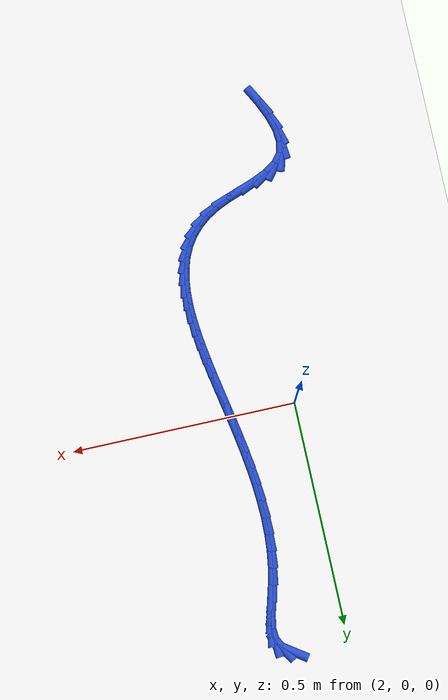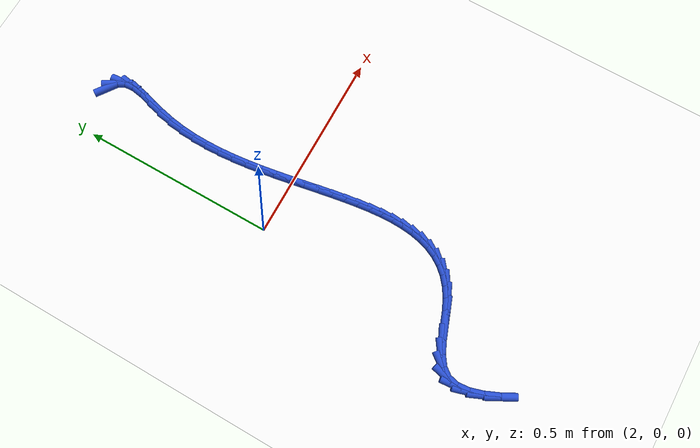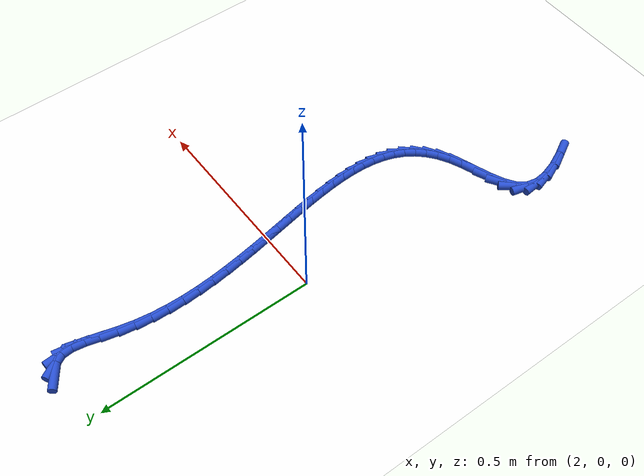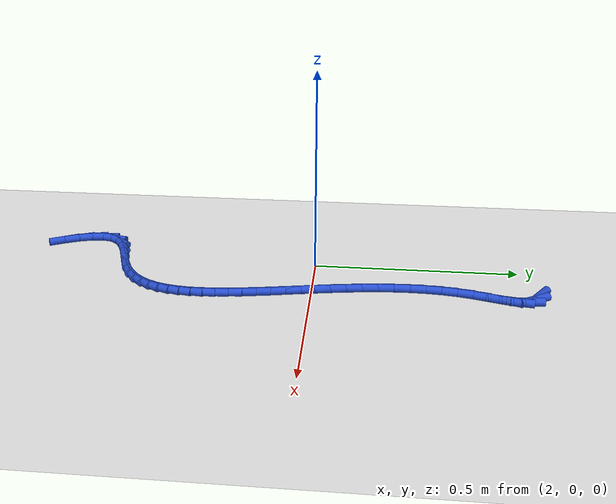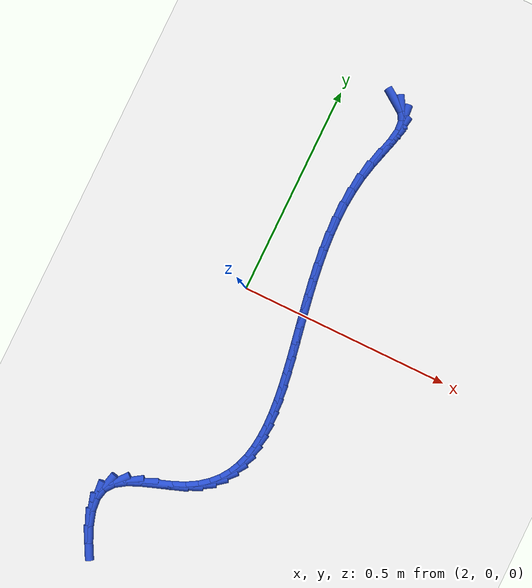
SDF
<sdf version="1.6">
 <world name="default">
  <model name="ground_plane">
   <static>1</static>
   <link name="link">
    <collision name="collision">
     <geometry><plane><normal>0 0 1</normal><size>100 100</size></plane></geometry>
     <surface><friction><ode><mu>100</mu><mu2>50</mu2></ode></friction></surface>
    </collision>
    <visual name="visual">
     <cast_shadows>0</cast_shadows>
     <geometry><plane><normal>0 0 1</normal><size>100 100</size></plane></geometry>
     <material>
      <script><uri>file://media/materials/scripts/gazebo.material</uri><name>Gazebo/WhiteGlow</name></script>
     </material>
    </visual>
   </link>
  </model>
  <model name="line">
   <link name="link_105">
    <pose>2.126120877146589 0.5310255200485601 0.01 0 1.57 -0.610400406205318</pose>
    <collision name="collision">
     <geometry><cylinder><radius>0.01</radius><length>0.08</length></cylinder></geometry>
    </collision>
    <visual name="visual">
     <material>
      <script><name>Gazebo/Blue</name><uri>file://media/materials/scripts/gazebo.material</uri></script>
     </material>
     <geometry><cylinder><radius>0.01</radius><length>0.08</length></cylinder></geometry>
    </visual>
   </link>
   <link name="link_106">
    <pose>2.1450677996404113 0.5177718630144462 0.01 0 1.57 -1.0331761095642413</pose>
    <collision name="collision">
     <geometry><cylinder><radius>0.01</radius><length>0.08</length></cylinder></geometry>
    </collision>
    <visual name="visual">
     <material>
      <script><name>Gazebo/Blue</name><uri>file://media/materials/scripts/gazebo.material</uri></script>
     </material>
     <geometry><cylinder><radius>0.01</radius><length>0.08</length></cylinder></geometry>
    </visual>
   </link>
   <link name="link_107">
    <pose>2.155918569462515 0.4995719608380626 0.01 0 1.57 -1.4891687633824537</pose>
    <collision name="collision">
     <geometry><cylinder><radius>0.01</radius><length>0.08</length></cylinder></geometry>
    </collision>
    <visual name="visual">
     <material>
      <script><name>Gazebo/Blue</name><uri>file://media/materials/scripts/gazebo.material</uri></script>
     </material>
     <geometry><cylinder><radius>0.01</radius><length>0.08</length></cylinder></geometry>
    </visual>
   </link>
   <link name="link_108">
    <pose>2.1578789883594007 0.4756086970731405 0.01 0 1.57 1.4050949927322074</pose>
    <collision name="collision">
     <geometry><cylinder><radius>0.01</radius><length>0.08</length></cylinder></geometry>
    </collision>
    <visual name="visual">
     <material>
      <script><name>Gazebo/Blue</name><uri>file://media/materials/scripts/gazebo.material</uri></script>
     </material>
     <geometry><cylinder><radius>0.01</radius><length>0.08</length></cylinder></geometry>
    </visual>
   </link>
   <link name="link_109">
    <pose>2.1530484317111993 0.4467238073910687 0.01 0 1.57 1.3084331271646414</pose>
    <collision name="collision">
     <geometry><cylinder><radius>0.01</radius><length>0.08</length></cylinder></geometry>
    </collision>
    <visual name="visual">
     <material>
      <script><name>Gazebo/Blue</name><uri>file://media/materials/scripts/gazebo.material</uri></script>
     </material>
     <geometry><cylinder><radius>0.01</radius><length>0.08</length></cylinder></geometry>
    </visual>
   </link>
   <link name="link_110">
    <pose>2.1443174268809764 0.4142125856955298 0.01 0 1.57 1.2981848403377607</pose>
    <collision name="collision">
     <geometry><cylinder><radius>0.01</radius><length>0.08</length></cylinder></geometry>
    </collision>
    <visual name="visual">
     <material>
      <script><name>Gazebo/Blue</name><uri>file://media/materials/scripts/gazebo.material</uri></script>
     </material>
     <geometry><cylinder><radius>0.01</radius><length>0.08</length></cylinder></geometry>
    </visual>
   </link>
   <link name="link_111">
    <pose>2.1345765205474345 0.379370336963637 0.01 0 1.57 1.3513854621748531</pose>
    <collision name="collision">
     <geometry><cylinder><radius>0.01</radius><length>0.08</length></cylinder></geometry>
    </collision>
    <visual name="visual">
     <material>
      <script><name>Gazebo/Blue</name><uri>file://media/materials/scripts/gazebo.material</uri></script>
     </material>
     <geometry><cylinder><radius>0.01</radius><length>0.08</length></cylinder></geometry>
    </visual>
   </link>
   <link name="link_112">
    <pose>2.1265628249629227 0.34343462855815987 0.01 0 1.57 1.4249579154106498</pose>
    <collision name="collision">
     <geometry><cylinder><radius>0.01</radius><length>0.08</length></cylinder></geometry>
    </collision>
    <visual name="visual">
     <material>
      <script><name>Gazebo/Blue</name><uri>file://media/materials/scripts/gazebo.material</uri></script>
     </material>
     <geometry><cylinder><radius>0.01</radius><length>0.08</length></cylinder></geometry>
    </visual>
   </link>
   <link name="link_113">
    <pose>2.121205798951722 0.30696280503284745 0.01 0 1.57 1.4910441308631721</pose>
    <collision name="collision">
     <geometry><cylinder><radius>0.01</radius><length>0.08</length></cylinder></geometry>
    </collision>
    <visual name="visual">
     <material>
      <script><name>Gazebo/Blue</name><uri>file://media/materials/scripts/gazebo.material</uri></script>
     </material>
     <geometry><cylinder><radius>0.01</radius><length>0.08</length></cylinder></geometry>
    </visual>
   </link>
   <link name="link_114">
    <pose>2.1182571856316526 0.2700690346812005 0.01 0 1.57 1.5490682874693984</pose>
    <collision name="collision">
     <geometry><cylinder><radius>0.01</radius><length>0.08</length></cylinder></geometry>
    </collision>
    <visual name="visual">
     <material>
      <script><name>Gazebo/Blue</name><uri>file://media/materials/scripts/gazebo.material</uri></script>
     </material>
     <geometry><cylinder><radius>0.01</radius><length>0.08</length></cylinder></geometry>
    </visual>
   </link>
   <link name="link_115">
    <pose>2.1174485768980387 0.2328599028602122 0.01 0 1.57 -1.542395435730789</pose>
    <collision name="collision">
     <geometry><cylinder><radius>0.01</radius><length>0.08</length></cylinder></geometry>
    </collision>
    <visual name="visual">
     <material>
      <script><name>Gazebo/Blue</name><uri>file://media/materials/scripts/gazebo.material</uri></script>
     </material>
     <geometry><cylinder><radius>0.01</radius><length>0.08</length></cylinder></geometry>
    </visual>
   </link>
   <link name="link_116">
    <pose>2.1185115646462034 0.19544199492687683 0.01 0 1.57 -1.4998556274646637</pose>
    <collision name="collision">
     <geometry><cylinder><radius>0.01</radius><length>0.08</length></cylinder></geometry>
    </collision>
    <visual name="visual">
     <material>
      <script><name>Gazebo/Blue</name><uri>file://media/materials/scripts/gazebo.material</uri></script>
     </material>
     <geometry><cylinder><radius>0.01</radius><length>0.08</length></cylinder></geometry>
    </visual>
   </link>
   <link name="link_117">
    <pose>2.1211777407714703 0.15792189623818748 0.01 0 1.57 -1.4645504058671235</pose>
    <collision name="collision">
     <geometry><cylinder><radius>0.01</radius><length>0.08</length></cylinder></geometry>
    </collision>
    <visual name="visual">
     <material>
      <script><name>Gazebo/Blue</name><uri>file://media/materials/scripts/gazebo.material</uri></script>
     </material>
     <geometry><cylinder><radius>0.01</radius><length>0.08</length></cylinder></geometry>
    </visual>
   </link>
   <link name="link_118">
    <pose>2.125178697169162 0.12040619215113692 0.01 0 1.57 -1.4361431368334605</pose>
    <collision name="collision">
     <geometry><cylinder><radius>0.01</radius><length>0.08</length></cylinder></geometry>
    </collision>
    <visual name="visual">
     <material>
      <script><name>Gazebo/Blue</name><uri>file://media/materials/scripts/gazebo.material</uri></script>
     </material>
     <geometry><cylinder><radius>0.01</radius><length>0.08</length></cylinder></geometry>
    </visual>
   </link>
   <link name="link_119">
    <pose>2.1302460257346025 0.08300146802271986 0.01 0 1.57 -1.414361426515246</pose>
    <collision name="collision">
     <geometry><cylinder><radius>0.01</radius><length>0.08</length></cylinder></geometry>
    </collision>
    <visual name="visual">
     <material>
      <script><name>Gazebo/Blue</name><uri>file://media/materials/scripts/gazebo.material</uri></script>
     </material>
     <geometry><cylinder><radius>0.01</radius><length>0.08</length></cylinder></geometry>
    </visual>
   </link>
   <link name="link_120">
    <pose>2.136111318363116 0.04581430920992917 0.01 0 1.57 -1.3990297198687427</pose>
    <collision name="collision">
     <geometry><cylinder><radius>0.01</radius><length>0.08</length></cylinder></geometry>
    </collision>
    <visual name="visual">
     <material>
      <script><name>Gazebo/Blue</name><uri>file://media/materials/scripts/gazebo.material</uri></script>
     </material>
     <geometry><cylinder><radius>0.01</radius><length>0.08</length></cylinder></geometry>
    </visual>
   </link>
   <link name="link_121">
    <pose>2.142506166950025 0.008951301069758366 0.01 0 1.57 -1.3900941320974278</pose>
    <collision name="collision">
     <geometry><cylinder><radius>0.01</radius><length>0.08</length></cylinder></geometry>
    </collision>
    <visual name="visual">
     <material>
      <script><name>Gazebo/Blue</name><uri>file://media/materials/scripts/gazebo.material</uri></script>
     </material>
     <geometry><cylinder><radius>0.01</radius><length>0.08</length></cylinder></geometry>
    </visual>
   </link>
   <link name="link_122">
    <pose>2.1491621633906535 -0.02748097104079914 0.01 0 1.57 -1.3876444847920106</pose>
    <collision name="collision">
     <geometry><cylinder><radius>0.01</radius><length>0.08</length></cylinder></geometry>
    </collision>
    <visual name="visual">
     <material>
      <script><name>Gazebo/Blue</name><uri>file://media/materials/scripts/gazebo.material</uri></script>
     </material>
     <geometry><cylinder><radius>0.01</radius><length>0.08</length></cylinder></geometry>
    </visual>
   </link>
   <link name="link_123">
    <pose>2.1558108995803242 -0.06337592176475046 0.01 0 1.57 -1.3919374189542404</pose>
    <collision name="collision">
     <geometry><cylinder><radius>0.01</radius><length>0.08</length></cylinder></geometry>
    </collision>
    <visual name="visual">
     <material>
      <script><name>Gazebo/Blue</name><uri>file://media/materials/scripts/gazebo.material</uri></script>
     </material>
     <geometry><cylinder><radius>0.01</radius><length>0.08</length></cylinder></geometry>
    </visual>
   </link>
   <link name="link_124">
    <pose>2.162183967414361 -0.09862696574510092 0.01 0 1.57 -1.4034233837212624</pose>
    <collision name="collision">
     <geometry><cylinder><radius>0.01</radius><length>0.08</length></cylinder></geometry>
    </collision>
    <visual name="visual">
     <material>
      <script><name>Gazebo/Blue</name><uri>file://media/materials/scripts/gazebo.material</uri></script>
     </material>
     <geometry><cylinder><radius>0.01</radius><length>0.08</length></cylinder></geometry>
    </visual>
   </link>
   <link name="link_125">
    <pose>2.1680129587880876 -0.1331275176248577 0.01 0 1.57 -1.4227789919953415</pose>
    <collision name="collision">
     <geometry><cylinder><radius>0.01</radius><length>0.08</length></cylinder></geometry>
    </collision>
    <visual name="visual">
     <material>
      <script><name>Gazebo/Blue</name><uri>file://media/materials/scripts/gazebo.material</uri></script>
     </material>
     <geometry><cylinder><radius>0.01</radius><length>0.08</length></cylinder></geometry>
    </visual>
   </link>
   <link name="link_126">
    <pose>2.173029465596828 -0.16677099204702775 0.01 0 1.57 -1.4509439961793047</pose>
    <collision name="collision">
     <geometry><cylinder><radius>0.01</radius><length>0.08</length></cylinder></geometry>
    </collision>
    <visual name="visual">
     <material>
      <script><name>Gazebo/Blue</name><uri>file://media/materials/scripts/gazebo.material</uri></script>
     </material>
     <geometry><cylinder><radius>0.01</radius><length>0.08</length></cylinder></geometry>
    </visual>
   </link>
   <link name="link_127">
    <pose>2.1769650797359037 -0.19945080365461665 0.01 0 1.57 -1.48915758512074</pose>
    <collision name="collision">
     <geometry><cylinder><radius>0.01</radius><length>0.08</length></cylinder></geometry>
    </collision>
    <visual name="visual">
     <material>
      <script><name>Gazebo/Blue</name><uri>file://media/materials/scripts/gazebo.material</uri></script>
     </material>
     <geometry><cylinder><radius>0.01</radius><length>0.08</length></cylinder></geometry>
    </visual>
   </link>
   <link name="link_128">
    <pose>2.179551393100639 -0.23106036709063138 0.01 0 1.57 -1.5389793448613924</pose>
    <collision name="collision">
     <geometry><cylinder><radius>0.01</radius><length>0.08</length></cylinder></geometry>
    </collision>
    <visual name="visual">
     <material>
      <script><name>Gazebo/Blue</name><uri>file://media/materials/scripts/gazebo.material</uri></script>
     </material>
     <geometry><cylinder><radius>0.01</radius><length>0.08</length></cylinder></geometry>
    </visual>
   </link>
   <link name="link_129">
    <pose>2.180519997586359 -0.26149309699807854 0.01 0 1.57 1.5393304143939606</pose>
    <collision name="collision">
     <geometry><cylinder><radius>0.01</radius><length>0.08</length></cylinder></geometry>
    </collision>
    <visual name="visual">
     <material>
      <script><name>Gazebo/Blue</name><uri>file://media/materials/scripts/gazebo.material</uri></script>
     </material>
     <geometry><cylinder><radius>0.01</radius><length>0.08</length></cylinder></geometry>
    </visual>
   </link>
   <link name="link_130">
    <pose>2.179602485088385 -0.29064240801996466 0.01 0 1.57 1.4605778796456945</pose>
    <collision name="collision">
     <geometry><cylinder><radius>0.01</radius><length>0.08</length></cylinder></geometry>
    </collision>
    <visual name="visual">
     <material>
      <script><name>Gazebo/Blue</name><uri>file://media/materials/scripts/gazebo.material</uri></script>
     </material>
     <geometry><cylinder><radius>0.01</radius><length>0.08</length></cylinder></geometry>
    </visual>
   </link>
   <link name="link_131">
    <pose>2.1765304475020417 -0.3184017147992962 0.01 0 1.57 1.3645409044480876</pose>
    <collision name="collision">
     <geometry><cylinder><radius>0.01</radius><length>0.08</length></cylinder></geometry>
    </collision>
    <visual name="visual">
     <material>
      <script><name>Gazebo/Blue</name><uri>file://media/materials/scripts/gazebo.material</uri></script>
     </material>
     <geometry><cylinder><radius>0.01</radius><length>0.08</length></cylinder></geometry>
    </visual>
   </link>
   <link name="link_132">
    <pose>2.171035476722651 -0.34466443197907964 0.01 0 1.57 1.2502702112302033</pose>
    <collision name="collision">
     <geometry><cylinder><radius>0.01</radius><length>0.08</length></cylinder></geometry>
    </collision>
    <visual name="visual">
     <material>
      <script><name>Gazebo/Blue</name><uri>file://media/materials/scripts/gazebo.material</uri></script>
     </material>
     <geometry><cylinder><radius>0.01</radius><length>0.08</length></cylinder></geometry>
    </visual>
   </link>
   <link name="link_133">
    <pose>2.162849164645538 -0.3693239742023224 0.01 0 1.57 1.1186768553705484</pose>
    <collision name="collision">
     <geometry><cylinder><radius>0.01</radius><length>0.08</length></cylinder></geometry>
    </collision>
    <visual name="visual">
     <material>
      <script><name>Gazebo/Blue</name><uri>file://media/materials/scripts/gazebo.material</uri></script>
     </material>
     <geometry><cylinder><radius>0.01</radius><length>0.08</length></cylinder></geometry>
    </visual>
   </link>
   <link name="link_134">
    <pose>2.151703103166026 -0.3922737561120295 0.01 0 1.57 0.973507000311545</pose>
    <collision name="collision">
     <geometry><cylinder><radius>0.01</radius><length>0.08</length></cylinder></geometry>
    </collision>
    <visual name="visual">
     <material>
      <script><name>Gazebo/Blue</name><uri>file://media/materials/scripts/gazebo.material</uri></script>
     </material>
     <geometry><cylinder><radius>0.01</radius><length>0.08</length></cylinder></geometry>
    </visual>
   </link>
   <link name="link_135">
    <pose>2.1373288841794373 -0.4134071923512081 0.01 0 1.57 0.8215117439249282</pose>
    <collision name="collision">
     <geometry><cylinder><radius>0.01</radius><length>0.08</length></cylinder></geometry>
    </collision>
    <visual name="visual">
     <material>
      <script><name>Gazebo/Blue</name><uri>file://media/materials/scripts/gazebo.material</uri></script>
     </material>
     <geometry><cylinder><radius>0.01</radius><length>0.08</length></cylinder></geometry>
    </visual>
   </link>
   <link name="link_136">
    <pose>2.119458099581096 -0.43261769756286483 0.01 0 1.57 0.6711339526919803</pose>
    <collision name="collision">
     <geometry><cylinder><radius>0.01</radius><length>0.08</length></cylinder></geometry>
    </collision>
    <visual name="visual">
     <material>
      <script><name>Gazebo/Blue</name><uri>file://media/materials/scripts/gazebo.material</uri></script>
     </material>
     <geometry><cylinder><radius>0.01</radius><length>0.08</length></cylinder></geometry>
    </visual>
   </link>
   <link name="link_137">
    <pose>2.097822341266326 -0.4497986863900062 0.01 0 1.57 0.5301421283331167</pose>
    <collision name="collision">
     <geometry><cylinder><radius>0.01</radius><length>0.08</length></cylinder></geometry>
    </collision>
    <visual name="visual">
     <material>
      <script><name>Gazebo/Blue</name><uri>file://media/materials/scripts/gazebo.material</uri></script>
     </material>
     <geometry><cylinder><radius>0.01</radius><length>0.08</length></cylinder></geometry>
    </visual>
   </link>
   <link name="link_138">
    <pose>2.07215320113045 -0.46484357347563876 0.01 0 1.57 0.4071577922518032</pose>
    <collision name="collision">
     <geometry><cylinder><radius>0.01</radius><length>0.08</length></cylinder></geometry>
    </collision>
    <visual name="visual">
     <material>
      <script><name>Gazebo/Blue</name><uri>file://media/materials/scripts/gazebo.material</uri></script>
     </material>
     <geometry><cylinder><radius>0.01</radius><length>0.08</length></cylinder></geometry>
    </visual>
   </link>
   <link name="link_139">
    <pose>2.042311864863443 -0.47771283629881345 0.01 0 1.57 0.3406431888221343</pose>
    <collision name="collision">
     <geometry><cylinder><radius>0.01</radius><length>0.08</length></cylinder></geometry>
    </collision>
    <visual name="visual">
     <material>
      <script><name>Gazebo/Blue</name><uri>file://media/materials/scripts/gazebo.material</uri></script>
     </material>
     <geometry><cylinder><radius>0.01</radius><length>0.08</length></cylinder></geometry>
    </visual>
   </link>
   <link name="link_140">
    <pose>2.0098242425064186 -0.4892284221066468 0.01 0 1.57 0.3427651744592048</pose>
    <collision name="collision">
     <geometry><cylinder><radius>0.01</radius><length>0.08</length></cylinder></geometry>
    </collision>
    <visual name="visual">
     <material>
      <script><name>Gazebo/Blue</name><uri>file://media/materials/scripts/gazebo.material</uri></script>
     </material>
     <geometry><cylinder><radius>0.01</radius><length>0.08</length></cylinder></geometry>
    </visual>
   </link>
   <link name="link_141">
    <pose>1.9773704863157002 -0.5008095811007877 0.01 0 1.57 0.414582925399038</pose>
    <collision name="collision">
     <geometry><cylinder><radius>0.01</radius><length>0.08</length></cylinder></geometry>
    </collision>
    <visual name="visual">
     <material>
      <script><name>Gazebo/Blue</name><uri>file://media/materials/scripts/gazebo.material</uri></script>
     </material>
     <geometry><cylinder><radius>0.01</radius><length>0.08</length></cylinder></geometry>
    </visual>
   </link>
   <link name="link_142">
    <pose>1.947653934107173 -0.513887561660608 0.01 0 1.57 0.5829104248140341</pose>
    <collision name="collision">
     <geometry><cylinder><radius>0.01</radius><length>0.08</length></cylinder></geometry>
    </collision>
    <visual name="visual">
     <material>
      <script><name>Gazebo/Blue</name><uri>file://media/materials/scripts/gazebo.material</uri></script>
     </material>
     <geometry><cylinder><radius>0.01</radius><length>0.08</length></cylinder></geometry>
    </visual>
   </link>
   <link name="link_143">
    <pose>1.9233779236967232 -0.5298936121654786 0.01 0 1.57 0.900843888778774</pose>
    <collision name="collision">
     <geometry><cylinder><radius>0.01</radius><length>0.08</length></cylinder></geometry>
    </collision>
    <visual name="visual">
     <material>
      <script><name>Gazebo/Blue</name><uri>file://media/materials/scripts/gazebo.material</uri></script>
     </material>
     <geometry><cylinder><radius>0.01</radius><length>0.08</length></cylinder></geometry>
    </visual>
   </link>
   <link name="link_144">
    <pose>1.907245219764255 -0.5502586426666825 0.01 0 1.57 1.3328388829014546</pose>
    <collision name="collision">
     <geometry><cylinder><radius>0.01</radius><length>0.08</length></cylinder></geometry>
    </collision>
    <visual name="visual">
     <material>
      <script><name>Gazebo/Blue</name><uri>file://media/materials/scripts/gazebo.material</uri></script>
     </material>
     <geometry><cylinder><radius>0.01</radius><length>0.08</length></cylinder></geometry>
    </visual>
   </link>
   <link name="link_145">
    <pose>1.9010336952061322 -0.5758675900459842 0.01 0 1.57 -1.4818321667341885</pose>
    <collision name="collision">
     <geometry><cylinder><radius>0.01</radius><length>0.08</length></cylinder></geometry>
    </collision>
    <visual name="visual">
     <material>
      <script><name>Gazebo/Blue</name><uri>file://media/materials/scripts/gazebo.material</uri></script>
     </material>
     <geometry><cylinder><radius>0.01</radius><length>0.08</length></cylinder></geometry>
    </visual>
   </link>
   <link name="link_146">
    <pose>1.9037170391724128 -0.6059500525659381 0.01 0 1.57 -1.2798727919838078</pose>
    <collision name="collision">
     <geometry><cylinder><radius>0.01</radius><length>0.08</length></cylinder></geometry>
    </collision>
    <visual name="visual">
     <material>
      <script><name>Gazebo/Blue</name><uri>file://media/materials/scripts/gazebo.material</uri></script>
     </material>
     <geometry><cylinder><radius>0.01</radius><length>0.08</length></cylinder></geometry>
    </visual>
   </link>
   <link name="link_147">
    <pose>1.9137394981038247 -0.6394230929911786 0.01 0 1.57 -1.154831156708701</pose>
    <collision name="collision">
     <geometry><cylinder><radius>0.01</radius><length>0.08</length></cylinder></geometry>
    </collision>
    <visual name="visual">
     <material>
      <script><name>Gazebo/Blue</name><uri>file://media/materials/scripts/gazebo.material</uri></script>
     </material>
     <geometry><cylinder><radius>0.01</radius><length>0.08</length></cylinder></geometry>
    </visual>
   </link>
   <link name="link_148">
    <pose>1.9295453184410973 -0.6752037740863406 0.01 0 1.57 -1.074606666640886</pose>
    <collision name="collision">
     <geometry><cylinder><radius>0.01</radius><length>0.08</length></cylinder></geometry>
    </collision>
    <visual name="visual">
     <material>
      <script><name>Gazebo/Blue</name><uri>file://media/materials/scripts/gazebo.material</uri></script>
     </material>
     <geometry><cylinder><radius>0.01</radius><length>0.08</length></cylinder></geometry>
    </visual>
   </link>
  </model>
 </world>
</sdf>
